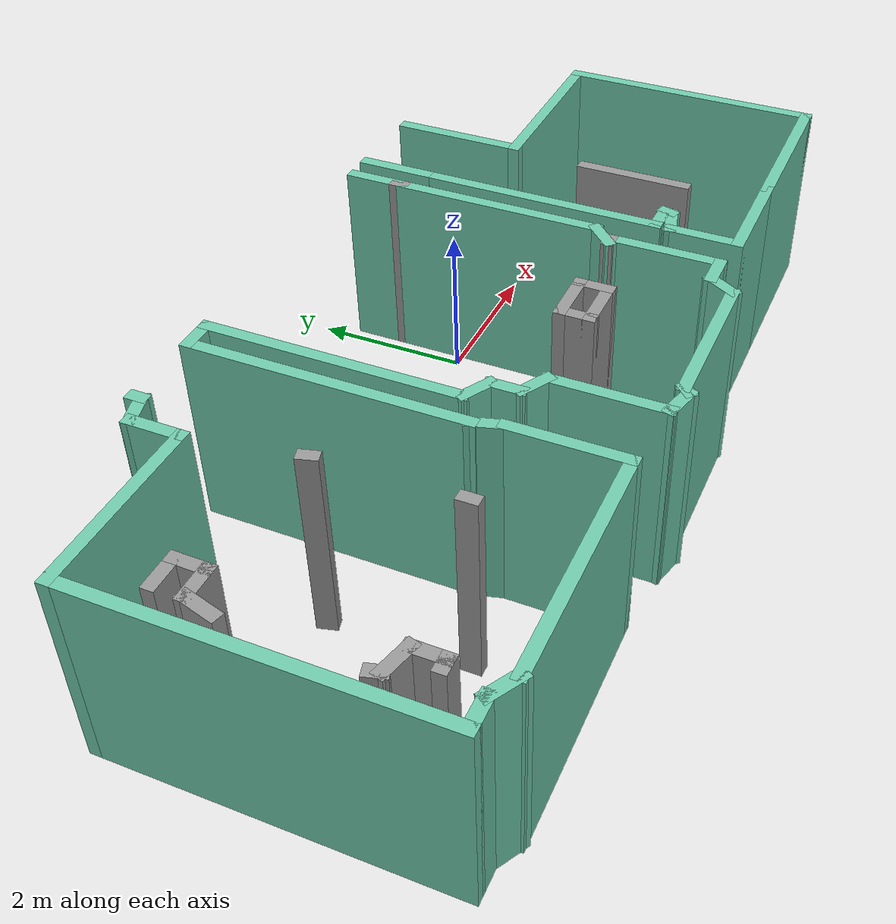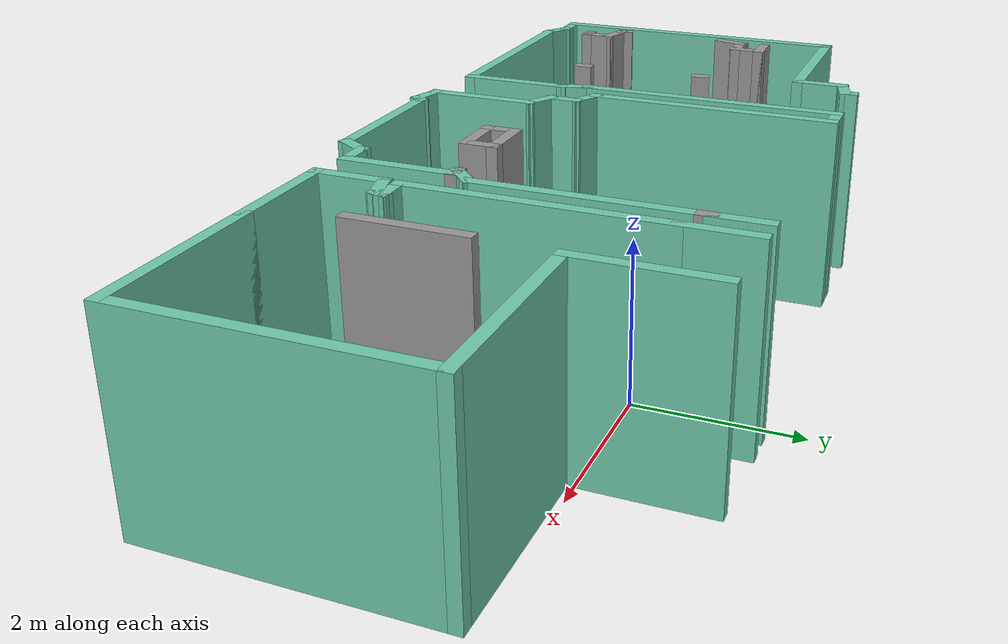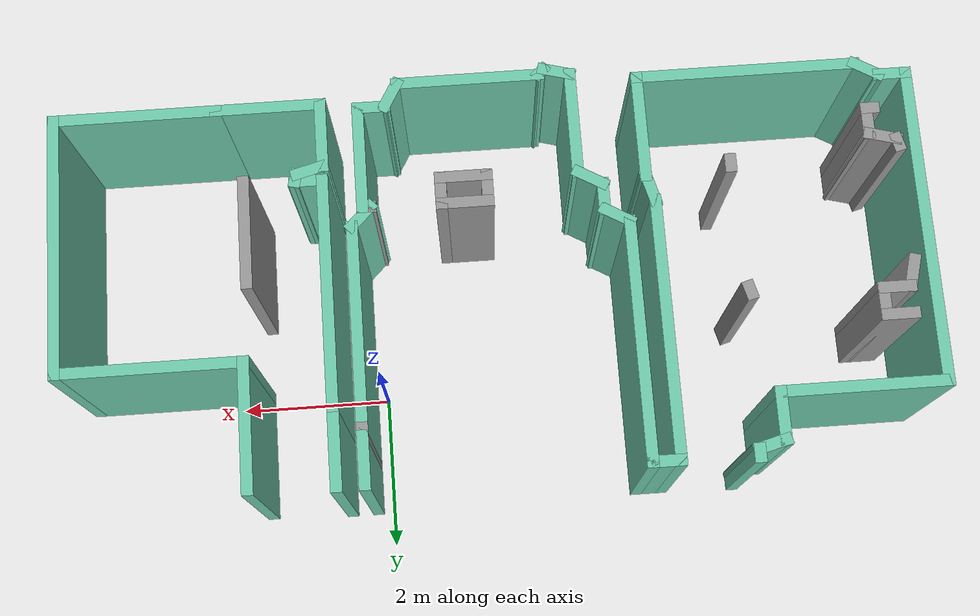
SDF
<sdf version="1.6">
 <model name="map_3">
  <pose>-1.57368 2.22942 0 0 -0 0</pose>
  <link name="Wall_100">
   <collision name="Wall_100_Collision">
    <geometry><box><size>1.75 0.15 2.5</size></box></geometry>
    <pose>0 0 1.25 0 -0 0</pose>
   </collision>
   <visual name="Wall_100_Visual">
    <pose>0 0 1.25 0 -0 0</pose>
    <geometry><box><size>1.75 0.15 2.5</size></box></geometry>
    <material>
     <script><uri>file://media/materials/scripts/gazebo.material</uri><name>Gazebo/Grey</name></script>
     <ambient>0.435294 0.796078 0.67451 1</ambient>
    </material>
    <meta><layer>0</layer></meta>
   </visual>
   <pose>3.22626 -1.57739 0 0 -0 1.5708</pose>
  </link>
  <link name="Wall_125">
   <collision name="Wall_125_Collision">
    <geometry><box><size>0.5 0.15 2.5</size></box></geometry>
    <pose>0 0 1.25 0 -0 0</pose>
   </collision>
   <visual name="Wall_125_Visual">
    <pose>0 0 1.25 0 -0 0</pose>
    <geometry><box><size>0.5 0.15 2.5</size></box></geometry>
    <material>
     <script><uri>file://media/materials/scripts/gazebo.material</uri><name>Gazebo/Grey</name></script>
     <ambient>1 1 1 1</ambient>
    </material>
    <meta><layer>0</layer></meta>
   </visual>
   <pose>0.031075 -4.44181 0 0 -0 -1.5708</pose>
  </link>
  <link name="Wall_126">
   <collision name="Wall_126_Collision">
    <geometry><box><size>0.75 0.15 2.5</size></box></geometry>
    <pose>0 0 1.25 0 -0 0</pose>
   </collision>
   <visual name="Wall_126_Visual">
    <pose>0 0 1.25 0 -0 0</pose>
    <geometry><box><size>0.75 0.15 2.5</size></box></geometry>
    <material>
     <script><uri>file://media/materials/scripts/gazebo.material</uri><name>Gazebo/Grey</name></script>
     <ambient>1 1 1 1</ambient>
    </material>
    <meta><layer>0</layer></meta>
   </visual>
   <pose>0.331075 -4.61681 0 0 -0 0</pose>
  </link>
  <link name="Wall_127">
   <collision name="Wall_127_Collision">
    <geometry><box><size>0.5 0.15 2.5</size></box></geometry>
    <pose>0 0 1.25 0 -0 0</pose>
   </collision>
   <visual name="Wall_127_Visual">
    <pose>0 0 1.25 0 -0 0</pose>
    <geometry><box><size>0.5 0.15 2.5</size></box></geometry>
    <material>
     <script><uri>file://media/materials/scripts/gazebo.material</uri><name>Gazebo/Grey</name></script>
     <ambient>1 1 1 1</ambient>
    </material>
    <meta><layer>0</layer></meta>
   </visual>
   <pose>0.631075 -4.44181 0 0 -0 1.5708</pose>
  </link>
  <link name="Wall_128">
   <collision name="Wall_128_Collision">
    <geometry><box><size>0.75 0.15 2.5</size></box></geometry>
    <pose>0 0 1.25 0 -0 0</pose>
   </collision>
   <visual name="Wall_128_Visual">
    <pose>0 0 1.25 0 -0 0</pose>
    <geometry><box><size>0.75 0.15 2.5</size></box></geometry>
    <material>
     <script><uri>file://media/materials/scripts/gazebo.material</uri><name>Gazebo/Grey</name></script>
     <ambient>1 1 1 1</ambient>
    </material>
    <meta><layer>0</layer></meta>
   </visual>
   <pose>0.331075 -4.26681 0 0 -0 3.14159</pose>
  </link>
  <link name="Wall_130">
   <collision name="Wall_130_Collision">
    <geometry><box><size>1.5 0.15 2.5</size></box></geometry>
    <pose>0 0 1.25 0 -0 0</pose>
   </collision>
   <visual name="Wall_130_Visual">
    <pose>0 0 1.25 0 -0 0</pose>
    <geometry><box><size>1.5 0.15 2.5</size></box></geometry>
    <material>
     <script><uri>file://media/materials/scripts/gazebo.material</uri><name>Gazebo/Grey</name></script>
     <ambient>1 1 1 1</ambient>
    </material>
    <meta><layer>0</layer></meta>
   </visual>
   <pose>3.15108 -4.06181 0 0 -0 -1.5708</pose>
  </link>
  <link name="Wall_132">
   <collision name="Wall_132_Collision">
    <geometry><box><size>0.25 0.15 2.5</size></box></geometry>
    <pose>0 0 1.25 0 -0 0</pose>
   </collision>
   <visual name="Wall_132_Visual">
    <pose>0 0 1.25 0 -0 0</pose>
    <geometry><box><size>0.25 0.15 2.5</size></box></geometry>
    <material>
     <script><uri>file://media/materials/scripts/gazebo.material</uri><name>Gazebo/Grey</name></script>
     <ambient>1 1 1 1</ambient>
    </material>
    <meta><layer>0</layer></meta>
   </visual>
   <pose>-3.17598 -2.85511 0 0 -0 -1.309</pose>
  </link>
  <link name="Wall_134">
   <collision name="Wall_134_Collision">
    <geometry><box><size>0.25 0.15 2.5</size></box></geometry>
    <pose>0 0 1.25 0 -0 0</pose>
   </collision>
   <visual name="Wall_134_Visual">
    <pose>0 0 1.25 0 -0 0</pose>
    <geometry><box><size>0.25 0.15 2.5</size></box></geometry>
    <material>
     <script><uri>file://media/materials/scripts/gazebo.material</uri><name>Gazebo/Grey</name></script>
     <ambient>1 1 1 1</ambient>
    </material>
    <meta><layer>0</layer></meta>
   </visual>
   <pose>-3.10893 -4.55681 0 0 -0 -1.5708</pose>
  </link>
  <link name="Wall_138">
   <collision name="Wall_138_Collision">
    <geometry><box><size>0.5 0.15 2.5</size></box></geometry>
    <pose>0 0 1.25 0 -0 0</pose>
   </collision>
   <visual name="Wall_138_Visual">
    <pose>0 0 1.25 0 -0 0</pose>
    <geometry><box><size>0.5 0.15 2.5</size></box></geometry>
    <material>
     <script><uri>file://media/materials/scripts/gazebo.material</uri><name>Gazebo/Grey</name></script>
     <ambient>1 1 1 1</ambient>
    </material>
    <meta><layer>0</layer></meta>
   </visual>
   <pose>-5.02718 -2.4211 0 0 -0 0</pose>
  </link>
  <link name="Wall_139">
   <collision name="Wall_139_Collision">
    <geometry><box><size>0.5 0.15 2.5</size></box></geometry>
    <pose>0 0 1.25 0 -0 0</pose>
   </collision>
   <visual name="Wall_139_Visual">
    <pose>0 0 1.25 0 -0 0</pose>
    <geometry><box><size>0.5 0.15 2.5</size></box></geometry>
    <material>
     <script><uri>file://media/materials/scripts/gazebo.material</uri><name>Gazebo/Grey</name></script>
     <ambient>1 1 1 1</ambient>
    </material>
    <meta><layer>0</layer></meta>
   </visual>
   <pose>-4.85218 -2.5961 0 0 -0 -1.5708</pose>
  </link>
  <link name="Wall_140">
   <collision name="Wall_140_Collision">
    <geometry><box><size>0.5 0.15 2.5</size></box></geometry>
    <pose>0 0 1.25 0 -0 0</pose>
   </collision>
   <visual name="Wall_140_Visual">
    <pose>0 0 1.25 0 -0 0</pose>
    <geometry><box><size>0.5 0.15 2.5</size></box></geometry>
    <material>
     <script><uri>file://media/materials/scripts/gazebo.material</uri><name>Gazebo/Grey</name></script>
     <ambient>1 1 1 1</ambient>
    </material>
    <meta><layer>0</layer></meta>
   </visual>
   <pose>-5.02718 -2.7711 0 0 -0 3.14159</pose>
  </link>
  <link name="Wall_141">
   <collision name="Wall_141_Collision">
    <geometry><box><size>0.5 0.15 2.5</size></box></geometry>
    <pose>0 0 1.25 0 -0 0</pose>
   </collision>
   <visual name="Wall_141_Visual">
    <pose>0 0 1.25 0 -0 0</pose>
    <geometry><box><size>0.5 0.15 2.5</size></box></geometry>
    <material>
     <script><uri>file://media/materials/scripts/gazebo.material</uri><name>Gazebo/Grey</name></script>
     <ambient>1 1 1 1</ambient>
    </material>
    <meta><layer>0</layer></meta>
   </visual>
   <pose>-5.24747 -2.94014 0 0 -0 -1.8326</pose>
  </link>
  <link name="Wall_144">
   <collision name="Wall_144_Collision">
    <geometry><box><size>0.25 0.15 2.5</size></box></geometry>
    <pose>0 0 1.25 0 -0 0</pose>
   </collision>
   <visual name="Wall_144_Visual">
    <pose>0 0 1.25 0 -0 0</pose>
    <geometry><box><size>0.25 0.15 2.5</size></box></geometry>
    <material>
     <script><uri>file://media/materials/scripts/gazebo.material</uri><name>Gazebo/Grey</name></script>
     <ambient>1 1 1 1</ambient>
    </material>
    <meta><layer>0</layer></meta>
   </visual>
   <pose>-5.28923 -4.6894 0 0 -0 -1.309</pose>
  </link>
  <link name="Wall_145">
   <collision name="Wall_145_Collision">
    <geometry><box><size>0.5 0.15 2.5</size></box></geometry>
    <pose>0 0 1.25 0 -0 0</pose>
   </collision>
   <visual name="Wall_145_Visual">
    <pose>0 0 1.25 0 -0 0</pose>
    <geometry><box><size>0.5 0.15 2.5</size></box></geometry>
    <material>
     <script><uri>file://media/materials/scripts/gazebo.material</uri><name>Gazebo/Grey</name></script>
     <ambient>1 1 1 1</ambient>
    </material>
    <meta><layer>0</layer></meta>
   </visual>
   <pose>-5.10726 -4.78299 0 0 -0 -0.261799</pose>
  </link>
  <link name="Wall_146">
   <collision name="Wall_146_Collision">
    <geometry><box><size>0.5 0.15 2.5</size></box></geometry>
    <pose>0 0 1.25 0 -0 0</pose>
   </collision>
   <visual name="Wall_146_Visual">
    <pose>0 0 1.25 0 -0 0</pose>
    <geometry><box><size>0.5 0.15 2.5</size></box></geometry>
    <material>
     <script><uri>file://media/materials/scripts/gazebo.material</uri><name>Gazebo/Grey</name></script>
     <ambient>1 1 1 1</ambient>
    </material>
    <meta><layer>0</layer></meta>
   </visual>
   <pose>-4.93822 -5.00328 0 0 -0 -1.5708</pose>
  </link>
  <link name="Wall_147">
   <collision name="Wall_147_Collision">
    <geometry><box><size>0.25 0.15 2.5</size></box></geometry>
    <pose>0 0 1.25 0 -0 0</pose>
   </collision>
   <visual name="Wall_147_Visual">
    <pose>0 0 1.25 0 -0 0</pose>
    <geometry><box><size>0.25 0.15 2.5</size></box></geometry>
    <material>
     <script><uri>file://media/materials/scripts/gazebo.material</uri><name>Gazebo/Grey</name></script>
     <ambient>1 1 1 1</ambient>
    </material>
    <meta><layer>0</layer></meta>
   </visual>
   <pose>-4.98822 -5.17828 0 0 -0 3.14159</pose>
  </link>
  <link name="Wall_56">
   <collision name="Wall_56_Collision">
    <geometry><box><size>0.25 0.15 2.5</size></box></geometry>
    <pose>0 0 1.25 0 -0 0</pose>
   </collision>
   <visual name="Wall_56_Visual">
    <pose>0 0 1.25 0 -0 0</pose>
    <geometry><box><size>0.25 0.15 2.5</size></box></geometry>
    <material>
     <script><uri>file://media/materials/scripts/gazebo.material</uri><name>Gazebo/Grey</name></script>
     <ambient>0.435294 0.796078 0.67451 1</ambient>
    </material>
    <meta><layer>0</layer></meta>
   </visual>
   <pose>-3.07172 -0.793419 0 0 -0 -1.5708</pose>
  </link>
  <link name="Wall_57">
   <collision name="Wall_57_Collision">
    <geometry><box><size>0.5 0.15 2.5</size></box></geometry>
    <pose>0 0 1.25 0 -0 0</pose>
   </collision>
   <visual name="Wall_57_Visual">
    <pose>0 0 1.25 0 -0 0</pose>
    <geometry><box><size>0.5 0.15 2.5</size></box></geometry>
    <material>
     <script><uri>file://media/materials/scripts/gazebo.material</uri><name>Gazebo/Grey</name></script>
     <ambient>0.435294 0.796078 0.67451 1</ambient>
    </material>
    <meta><layer>0</layer></meta>
   </visual>
   <pose>-3.24076 -0.888712 0 0 -0 -2.87979</pose>
  </link>
  <link name="Wall_58">
   <collision name="Wall_58_Collision">
    <geometry><box><size>0.75 0.15 2.5</size></box></geometry>
    <pose>0 0 1.25 0 -0 0</pose>
   </collision>
   <visual name="Wall_58_Visual">
    <pose>0 0 1.25 0 -0 0</pose>
    <geometry><box><size>0.75 0.15 2.5</size></box></geometry>
    <material>
     <script><uri>file://media/materials/scripts/gazebo.material</uri><name>Gazebo/Grey</name></script>
     <ambient>0.435294 0.796078 0.67451 1</ambient>
    </material>
    <meta><layer>0</layer></meta>
   </visual>
   <pose>-3.40979 -1.23401 0 0 -0 -1.5708</pose>
  </link>
  <link name="Wall_59">
   <collision name="Wall_59_Collision">
    <geometry><box><size>2.25 0.15 2.5</size></box></geometry>
    <pose>0 0 1.25 0 -0 0</pose>
   </collision>
   <visual name="Wall_59_Visual">
    <pose>0 0 1.25 0 -0 0</pose>
    <geometry><box><size>2.25 0.15 2.5</size></box></geometry>
    <material>
     <script><uri>file://media/materials/scripts/gazebo.material</uri><name>Gazebo/Grey</name></script>
     <ambient>0.435294 0.796078 0.67451 1</ambient>
    </material>
    <meta><layer>0</layer></meta>
   </visual>
   <pose>-4.45979 -1.53401 0 0 -0 3.14159</pose>
  </link>
  <link name="Wall_62">
   <collision name="Wall_62_Collision">
    <geometry><box><size>4.25 0.15 2.5</size></box></geometry>
    <pose>0 0 1.25 0 -0 0</pose>
   </collision>
   <visual name="Wall_62_Visual">
    <pose>0 0 1.25 0 -0 0</pose>
    <geometry><box><size>4.25 0.15 2.5</size></box></geometry>
    <material>
     <script><uri>file://media/materials/scripts/gazebo.material</uri><name>Gazebo/Grey</name></script>
     <ambient>0.435294 0.796078 0.67451 1</ambient>
    </material>
    <meta><layer>0</layer></meta>
   </visual>
   <pose>-5.50979 -3.58401 0 0 -0 -1.5708</pose>
  </link>
  <link name="Wall_63">
   <collision name="Wall_63_Collision">
    <geometry><box><size>0.5 0.15 2.5</size></box></geometry>
    <pose>0 0 1.25 0 -0 0</pose>
   </collision>
   <visual name="Wall_63_Visual">
    <pose>0 0 1.25 0 -0 0</pose>
    <geometry><box><size>0.5 0.15 2.5</size></box></geometry>
    <material>
     <script><uri>file://media/materials/scripts/gazebo.material</uri><name>Gazebo/Grey</name></script>
     <ambient>0.435294 0.796078 0.67451 1</ambient>
    </material>
    <meta><layer>0</layer></meta>
   </visual>
   <pose>-5.33479 -5.63401 0 0 -0 0</pose>
  </link>
  <link name="Wall_64">
   <collision name="Wall_64_Collision">
    <geometry><box><size>0.5 0.15 2.5</size></box></geometry>
    <pose>0 0 1.25 0 -0 0</pose>
   </collision>
   <visual name="Wall_64_Visual">
    <pose>0 0 1.25 0 -0 0</pose>
    <geometry><box><size>0.5 0.15 2.5</size></box></geometry>
    <material>
     <script><uri>file://media/materials/scripts/gazebo.material</uri><name>Gazebo/Grey</name></script>
     <ambient>0.435294 0.796078 0.67451 1</ambient>
    </material>
    <meta><layer>0</layer></meta>
   </visual>
   <pose>-5.00824 -5.72151 0 0 -0 -0.523599</pose>
  </link>
  <link name="Wall_65">
   <collision name="Wall_65_Collision">
    <geometry><box><size>3 0.15 2.5</size></box></geometry>
    <pose>0 0 1.25 0 -0 0</pose>
   </collision>
   <visual name="Wall_65_Visual">
    <pose>0 0 1.25 0 -0 0</pose>
    <geometry><box><size>3 0.15 2.5</size></box></geometry>
    <material>
     <script><uri>file://media/materials/scripts/gazebo.material</uri><name>Gazebo/Grey</name></script>
     <ambient>0.435294 0.796078 0.67451 1</ambient>
    </material>
    <meta><layer>0</layer></meta>
   </visual>
   <pose>-3.43168 -5.80901 0 0 -0 0</pose>
  </link>
  <link name="Wall_66">
   <collision name="Wall_66_Collision">
    <geometry><box><size>1.5 0.15 2.5</size></box></geometry>
    <pose>0 0 1.25 0 -0 0</pose>
   </collision>
   <visual name="Wall_66_Visual">
    <pose>0 0 1.25 0 -0 0</pose>
    <geometry><box><size>1.5 0.15 2.5</size></box></geometry>
    <material>
     <script><uri>file://media/materials/scripts/gazebo.material</uri><name>Gazebo/Grey</name></script>
     <ambient>0.435294 0.796078 0.67451 1</ambient>
    </material>
    <meta><layer>0</layer></meta>
   </visual>
   <pose>-2.00669 -5.13401 0 0 -0 1.5708</pose>
  </link>
  <link name="Wall_67">
   <collision name="Wall_67_Collision">
    <geometry><box><size>0.5 0.15 2.5</size></box></geometry>
    <pose>0 0 1.25 0 -0 0</pose>
   </collision>
   <visual name="Wall_67_Visual">
    <pose>0 0 1.25 0 -0 0</pose>
    <geometry><box><size>0.5 0.15 2.5</size></box></geometry>
    <material>
     <script><uri>file://media/materials/scripts/gazebo.material</uri><name>Gazebo/Grey</name></script>
     <ambient>0.435294 0.796078 0.67451 1</ambient>
    </material>
    <meta><layer>0</layer></meta>
   </visual>
   <pose>-2.05198 -4.28997 0 0 -0 1.8326</pose>
  </link>
  <link name="Wall_68">
   <collision name="Wall_68_Collision">
    <geometry><box><size>3.5 0.15 2.5</size></box></geometry>
    <pose>0 0 1.25 0 -0 0</pose>
   </collision>
   <visual name="Wall_68_Visual">
    <pose>0 0 1.25 0 -0 0</pose>
    <geometry><box><size>3.5 0.15 2.5</size></box></geometry>
    <material>
     <script><uri>file://media/materials/scripts/gazebo.material</uri><name>Gazebo/Grey</name></script>
     <ambient>0.435294 0.796078 0.67451 1</ambient>
    </material>
    <meta><layer>0</layer></meta>
   </visual>
   <pose>-2.09727 -2.44593 0 0 -0 1.5708</pose>
  </link>
  <link name="Wall_69">
   <collision name="Wall_69_Collision">
    <geometry><box><size>0.5 0.15 2.5</size></box></geometry>
    <pose>0 0 1.25 0 -0 0</pose>
   </collision>
   <visual name="Wall_69_Visual">
    <pose>0 0 1.25 0 -0 0</pose>
    <geometry><box><size>0.5 0.15 2.5</size></box></geometry>
    <material>
     <script><uri>file://media/materials/scripts/gazebo.material</uri><name>Gazebo/Grey</name></script>
     <ambient>0.435294 0.796078 0.67451 1</ambient>
    </material>
    <meta><layer>0</layer></meta>
   </visual>
   <pose>-1.92227 -0.770932 0 0 -0 0</pose>
  </link>
  <link name="Wall_70">
   <collision name="Wall_70_Collision">
    <geometry><box><size>3.25 0.15 2.5</size></box></geometry>
    <pose>0 0 1.25 0 -0 0</pose>
   </collision>
   <visual name="Wall_70_Visual">
    <pose>0 0 1.25 0 -0 0</pose>
    <geometry><box><size>3.25 0.15 2.5</size></box></geometry>
    <material>
     <script><uri>file://media/materials/scripts/gazebo.material</uri><name>Gazebo/Grey</name></script>
     <ambient>0.435294 0.796078 0.67451 1</ambient>
    </material>
    <meta><layer>0</layer></meta>
   </visual>
   <pose>-1.74727 -2.32093 0 0 -0 -1.5708</pose>
  </link>
  <link name="Wall_71">
   <collision name="Wall_71_Collision">
    <geometry><box><size>0.5 0.15 2.5</size></box></geometry>
    <pose>0 0 1.25 0 -0 0</pose>
   </collision>
   <visual name="Wall_71_Visual">
    <pose>0 0 1.25 0 -0 0</pose>
    <geometry><box><size>0.5 0.15 2.5</size></box></geometry>
    <material>
     <script><uri>file://media/materials/scripts/gazebo.material</uri><name>Gazebo/Grey</name></script>
     <ambient>0.435294 0.796078 0.67451 1</ambient>
    </material>
    <meta><layer>0</layer></meta>
   </visual>
   <pose>-1.59572 -3.95843 0 0 -0 -0.523599</pose>
  </link>
  <link name="Wall_72">
   <collision name="Wall_72_Collision">
    <geometry><box><size>0.5 0.15 2.5</size></box></geometry>
    <pose>0 0 1.25 0 -0 0</pose>
   </collision>
   <visual name="Wall_72_Visual">
    <pose>0 0 1.25 0 -0 0</pose>
    <geometry><box><size>0.5 0.15 2.5</size></box></geometry>
    <material>
     <script><uri>file://media/materials/scripts/gazebo.material</uri><name>Gazebo/Grey</name></script>
     <ambient>0.435294 0.796078 0.67451 1</ambient>
    </material>
    <meta><layer>0</layer></meta>
   </visual>
   <pose>-1.44416 -4.22093 0 0 -0 -1.5708</pose>
  </link>
  <link name="Wall_73">
   <collision name="Wall_73_Collision">
    <geometry><box><size>0.5 0.15 2.5</size></box></geometry>
    <pose>0 0 1.25 0 -0 0</pose>
   </collision>
   <visual name="Wall_73_Visual">
    <pose>0 0 1.25 0 -0 0</pose>
    <geometry><box><size>0.5 0.15 2.5</size></box></geometry>
    <material>
     <script><uri>file://media/materials/scripts/gazebo.material</uri><name>Gazebo/Grey</name></script>
     <ambient>0.435294 0.796078 0.67451 1</ambient>
    </material>
    <meta><layer>0</layer></meta>
   </visual>
   <pose>-1.29261 -4.48343 0 0 -0 -0.523599</pose>
  </link>
  <link name="Wall_74">
   <collision name="Wall_74_Collision">
    <geometry><box><size>1.5 0.15 2.5</size></box></geometry>
    <pose>0 0 1.25 0 -0 0</pose>
   </collision>
   <visual name="Wall_74_Visual">
    <pose>0 0 1.25 0 -0 0</pose>
    <geometry><box><size>1.5 0.15 2.5</size></box></geometry>
    <material>
     <script><uri>file://media/materials/scripts/gazebo.material</uri><name>Gazebo/Grey</name></script>
     <ambient>0.435294 0.796078 0.67451 1</ambient>
    </material>
    <meta><layer>0</layer></meta>
   </visual>
   <pose>-1.14105 -5.24593 0 0 -0 -1.5708</pose>
  </link>
  <link name="Wall_75">
   <collision name="Wall_75_Collision">
    <geometry><box><size>0.5 0.15 2.5</size></box></geometry>
    <pose>0 0 1.25 0 -0 0</pose>
   </collision>
   <visual name="Wall_75_Visual">
    <pose>0 0 1.25 0 -0 0</pose>
    <geometry><box><size>0.5 0.15 2.5</size></box></geometry>
    <material>
     <script><uri>file://media/materials/scripts/gazebo.material</uri><name>Gazebo/Grey</name></script>
     <ambient>0.435294 0.796078 0.67451 1</ambient>
    </material>
    <meta><layer>0</layer></meta>
   </visual>
   <pose>-0.972017 -5.96622 0 0 -0 -0.261799</pose>
  </link>
  <link name="Wall_77">
   <collision name="Wall_77_Collision">
    <geometry><box><size>0.25 0.15 2.5</size></box></geometry>
    <pose>0 0 1.25 0 -0 0</pose>
   </collision>
   <visual name="Wall_77_Visual">
    <pose>0 0 1.25 0 -0 0</pose>
    <geometry><box><size>0.25 0.15 2.5</size></box></geometry>
    <material>
     <script><uri>file://media/materials/scripts/gazebo.material</uri><name>Gazebo/Grey</name></script>
     <ambient>0.435294 0.796078 0.67451 1</ambient>
    </material>
    <meta><layer>0</layer></meta>
   </visual>
   <pose>-0.767624 -5.97616 0 0 -0 0.785398</pose>
  </link>
  <link name="Wall_78">
   <collision name="Wall_78_Collision">
    <geometry><box><size>2 0.15 2.5</size></box></geometry>
    <pose>0 0 1.25 0 -0 0</pose>
   </collision>
   <visual name="Wall_78_Visual">
    <pose>0 0 1.25 0 -0 0</pose>
    <geometry><box><size>2 0.15 2.5</size></box></geometry>
    <material>
     <script><uri>file://media/materials/scripts/gazebo.material</uri><name>Gazebo/Grey</name></script>
     <ambient>0.435294 0.796078 0.67451 1</ambient>
    </material>
    <meta><layer>0</layer></meta>
   </visual>
   <pose>0.192731 -5.94081 0 0 -0 0</pose>
  </link>
  <link name="Wall_79">
   <collision name="Wall_79_Collision">
    <geometry><box><size>0.5 0.15 2.5</size></box></geometry>
    <pose>0 0 1.25 0 -0 0</pose>
   </collision>
   <visual name="Wall_79_Visual">
    <pose>0 0 1.25 0 -0 0</pose>
    <geometry><box><size>0.5 0.15 2.5</size></box></geometry>
    <material>
     <script><uri>file://media/materials/scripts/gazebo.material</uri><name>Gazebo/Grey</name></script>
     <ambient>0.435294 0.796078 0.67451 1</ambient>
    </material>
    <meta><layer>0</layer></meta>
   </visual>
   <pose>1.20523 -5.78925 0 0 -0 1.0472</pose>
  </link>
  <link name="Wall_80">
   <collision name="Wall_80_Collision">
    <geometry><box><size>0.5 0.15 2.5</size></box></geometry>
    <pose>0 0 1.25 0 -0 0</pose>
   </collision>
   <visual name="Wall_80_Visual">
    <pose>0 0 1.25 0 -0 0</pose>
    <geometry><box><size>0.5 0.15 2.5</size></box></geometry>
    <material>
     <script><uri>file://media/materials/scripts/gazebo.material</uri><name>Gazebo/Grey</name></script>
     <ambient>0.435294 0.796078 0.67451 1</ambient>
    </material>
    <meta><layer>0</layer></meta>
   </visual>
   <pose>1.46773 -5.6377 0 0 -0 0</pose>
  </link>
  <link name="Wall_81">
   <collision name="Wall_81_Collision">
    <geometry><box><size>1.5 0.15 2.5</size></box></geometry>
    <pose>0 0 1.25 0 -0 0</pose>
   </collision>
   <visual name="Wall_81_Visual">
    <pose>0 0 1.25 0 -0 0</pose>
    <geometry><box><size>1.5 0.15 2.5</size></box></geometry>
    <material>
     <script><uri>file://media/materials/scripts/gazebo.material</uri><name>Gazebo/Grey</name></script>
     <ambient>0.435294 0.796078 0.67451 1</ambient>
    </material>
    <meta><layer>0</layer></meta>
   </visual>
   <pose>1.64273 -4.9627 0 0 -0 1.5708</pose>
  </link>
  <link name="Wall_82">
   <collision name="Wall_82_Collision">
    <geometry><box><size>0.25 0.15 2.5</size></box></geometry>
    <pose>0 0 1.25 0 -0 0</pose>
   </collision>
   <visual name="Wall_82_Visual">
    <pose>0 0 1.25 0 -0 0</pose>
    <geometry><box><size>0.25 0.15 2.5</size></box></geometry>
    <material>
     <script><uri>file://media/materials/scripts/gazebo.material</uri><name>Gazebo/Grey</name></script>
     <ambient>1 1 1 1</ambient>
    </material>
    <meta><layer>0</layer></meta>
   </visual>
   <pose>1.59273 -4.2877 0 0 -0 3.14159</pose>
  </link>
  <link name="Wall_83">
   <collision name="Wall_83_Collision">
    <geometry><box><size>0.5 0.15 2.5</size></box></geometry>
    <pose>0 0 1.25 0 -0 0</pose>
   </collision>
   <visual name="Wall_83_Visual">
    <pose>0 0 1.25 0 -0 0</pose>
    <geometry><box><size>0.5 0.15 2.5</size></box></geometry>
    <material>
     <script><uri>file://media/materials/scripts/gazebo.material</uri><name>Gazebo/Grey</name></script>
     <ambient>0.435294 0.796078 0.67451 1</ambient>
    </material>
    <meta><layer>0</layer></meta>
   </visual>
   <pose>1.66647 -4.16395 0 0 -0 0.785398</pose>
  </link>
  <link name="Wall_86">
   <collision name="Wall_86_Collision">
    <geometry><box><size>2.75 0.15 2.5</size></box></geometry>
    <pose>0 0 1.25 0 -0 0</pose>
   </collision>
   <visual name="Wall_86_Visual">
    <pose>0 0 1.25 0 -0 0</pose>
    <geometry><box><size>2.75 0.15 2.5</size></box></geometry>
    <material>
     <script><uri>file://media/materials/scripts/gazebo.material</uri><name>Gazebo/Grey</name></script>
     <ambient>0.435294 0.796078 0.67451 1</ambient>
    </material>
    <meta><layer>0</layer></meta>
   </visual>
   <pose>1.79022 -2.74021 0 0 -0 1.5708</pose>
  </link>
  <link name="Wall_87">
   <collision name="Wall_87_Collision">
    <geometry><box><size>0.25 0.15 2.5</size></box></geometry>
    <pose>0 0 1.25 0 -0 0</pose>
   </collision>
   <visual name="Wall_87_Visual">
    <pose>0 0 1.25 0 -0 0</pose>
    <geometry><box><size>0.25 0.15 2.5</size></box></geometry>
    <material>
     <script><uri>file://media/materials/scripts/gazebo.material</uri><name>Gazebo/Grey</name></script>
     <ambient>1 1 1 1</ambient>
    </material>
    <meta><layer>0</layer></meta>
   </visual>
   <pose>1.79022 -1.39021 0 0 -0 1.5708</pose>
  </link>
  <link name="Wall_88">
   <collision name="Wall_88_Collision">
    <geometry><box><size>0.75 0.15 2.5</size></box></geometry>
    <pose>0 0 1.25 0 -0 0</pose>
   </collision>
   <visual name="Wall_88_Visual">
    <pose>0 0 1.25 0 -0 0</pose>
    <geometry><box><size>0.75 0.15 2.5</size></box></geometry>
    <material>
     <script><uri>file://media/materials/scripts/gazebo.material</uri><name>Gazebo/Grey</name></script>
     <ambient>0.435294 0.796078 0.67451 1</ambient>
    </material>
    <meta><layer>0</layer></meta>
   </visual>
   <pose>1.79022 -1.04021 0 0 -0 1.5708</pose>
  </link>
  <link name="Wall_90">
   <collision name="Wall_90_Collision">
    <geometry><box><size>1 0.15 2.5</size></box></geometry>
    <pose>0 0 1.25 0 -0 0</pose>
   </collision>
   <visual name="Wall_90_Visual">
    <pose>0 0 1.25 0 -0 0</pose>
    <geometry><box><size>1 0.15 2.5</size></box></geometry>
    <material>
     <script><uri>file://media/materials/scripts/gazebo.material</uri><name>Gazebo/Grey</name></script>
     <ambient>0.435294 0.796078 0.67451 1</ambient>
    </material>
    <meta><layer>0</layer></meta>
   </visual>
   <pose>2.14022 -1.16521 0 0 -0 -1.5708</pose>
  </link>
  <link name="Wall_91">
   <collision name="Wall_91_Collision">
    <geometry><box><size>3.25 0.15 2.5</size></box></geometry>
    <pose>0 0 1.25 0 -0 0</pose>
   </collision>
   <visual name="Wall_91_Visual">
    <pose>0 0 1.25 0 -0 0</pose>
    <geometry><box><size>3.25 0.15 2.5</size></box></geometry>
    <material>
     <script><uri>file://media/materials/scripts/gazebo.material</uri><name>Gazebo/Grey</name></script>
     <ambient>0.435294 0.796078 0.67451 1</ambient>
    </material>
    <meta><layer>0</layer></meta>
   </visual>
   <pose>2.14022 -3.14021 0 0 -0 -1.5708</pose>
  </link>
  <link name="Wall_92">
   <collision name="Wall_92_Collision">
    <geometry><box><size>0.5 0.15 2.5</size></box></geometry>
    <pose>0 0 1.25 0 -0 0</pose>
   </collision>
   <visual name="Wall_92_Visual">
    <pose>0 0 1.25 0 -0 0</pose>
    <geometry><box><size>0.5 0.15 2.5</size></box></geometry>
    <material>
     <script><uri>file://media/materials/scripts/gazebo.material</uri><name>Gazebo/Grey</name></script>
     <ambient>0.435294 0.796078 0.67451 1</ambient>
    </material>
    <meta><layer>0</layer></meta>
   </visual>
   <pose>2.31522 -4.69021 0 0 -0 0</pose>
  </link>
  <link name="Wall_93">
   <collision name="Wall_93_Collision">
    <geometry><box><size>0.25 0.15 2.5</size></box></geometry>
    <pose>0 0 1.25 0 -0 0</pose>
   </collision>
   <visual name="Wall_93_Visual">
    <pose>0 0 1.25 0 -0 0</pose>
    <geometry><box><size>0.25 0.15 2.5</size></box></geometry>
    <material>
     <script><uri>file://media/materials/scripts/gazebo.material</uri><name>Gazebo/Grey</name></script>
     <ambient>0.435294 0.796078 0.67451 1</ambient>
    </material>
    <meta><layer>0</layer></meta>
   </visual>
   <pose>2.47728 -4.73851 0 0 -0 -1.8326</pose>
  </link>
  <link name="Wall_94">
   <collision name="Wall_94_Collision">
    <geometry><box><size>0.5 0.15 2.5</size></box></geometry>
    <pose>0 0 1.25 0 -0 0</pose>
   </collision>
   <visual name="Wall_94_Visual">
    <pose>0 0 1.25 0 -0 0</pose>
    <geometry><box><size>0.5 0.15 2.5</size></box></geometry>
    <material>
     <script><uri>file://media/materials/scripts/gazebo.material</uri><name>Gazebo/Grey</name></script>
     <ambient>0.435294 0.796078 0.67451 1</ambient>
    </material>
    <meta><layer>0</layer></meta>
   </visual>
   <pose>2.2953 -4.8321 0 0 -0 -2.87979</pose>
  </link>
  <link name="Wall_95">
   <collision name="Wall_95_Collision">
    <geometry><box><size>1 0.15 2.5</size></box></geometry>
    <pose>0 0 1.25 0 -0 0</pose>
   </collision>
   <visual name="Wall_95_Visual">
    <pose>0 0 1.25 0 -0 0</pose>
    <geometry><box><size>1 0.15 2.5</size></box></geometry>
    <material>
     <script><uri>file://media/materials/scripts/gazebo.material</uri><name>Gazebo/Grey</name></script>
     <ambient>0.435294 0.796078 0.67451 1</ambient>
    </material>
    <meta><layer>0</layer></meta>
   </visual>
   <pose>2.12626 -5.30239 0 0 -0 -1.5708</pose>
  </link>
  <link name="Wall_96">
   <collision name="Wall_96_Collision">
    <geometry><box><size>1.5 0.15 2.5</size></box></geometry>
    <pose>0 0 1.25 0 -0 0</pose>
   </collision>
   <visual name="Wall_96_Visual">
    <pose>0 0 1.25 0 -0 0</pose>
    <geometry><box><size>1.5 0.15 2.5</size></box></geometry>
    <material>
     <script><uri>file://media/materials/scripts/gazebo.material</uri><name>Gazebo/Grey</name></script>
     <ambient>0.435294 0.796078 0.67451 1</ambient>
    </material>
    <meta><layer>0</layer></meta>
   </visual>
   <pose>2.80126 -5.72739 0 0 -0 0</pose>
  </link>
  <link name="Wall_97">
   <collision name="Wall_97_Collision">
    <geometry><box><size>2.25 0.15 2.5</size></box></geometry>
    <pose>0 0 1.25 0 -0 0</pose>
   </collision>
   <visual name="Wall_97_Visual">
    <pose>0 0 1.25 0 -0 0</pose>
    <geometry><box><size>2.25 0.15 2.5</size></box></geometry>
    <material>
     <script><uri>file://media/materials/scripts/gazebo.material</uri><name>Gazebo/Grey</name></script>
     <ambient>0.435294 0.796078 0.67451 1</ambient>
    </material>
    <meta><layer>0</layer></meta>
   </visual>
   <pose>4.52626 -5.72739 0 0 -0 0</pose>
  </link>
  <link name="Wall_98">
   <collision name="Wall_98_Collision">
    <geometry><box><size>3.5 0.15 2.5</size></box></geometry>
    <pose>0 0 1.25 0 -0 0</pose>
   </collision>
   <visual name="Wall_98_Visual">
    <pose>0 0 1.25 0 -0 0</pose>
    <geometry><box><size>3.5 0.15 2.5</size></box></geometry>
    <material>
     <script><uri>file://media/materials/scripts/gazebo.material</uri><name>Gazebo/Grey</name></script>
     <ambient>0.435294 0.796078 0.67451 1</ambient>
    </material>
    <meta><layer>0</layer></meta>
   </visual>
   <pose>5.57626 -4.05239 0 0 -0 1.5708</pose>
  </link>
  <link name="Wall_99">
   <collision name="Wall_99_Collision">
    <geometry><box><size>2.5 0.15 2.5</size></box></geometry>
    <pose>0 0 1.25 0 -0 0</pose>
   </collision>
   <visual name="Wall_99_Visual">
    <pose>0 0 1.25 0 -0 0</pose>
    <geometry><box><size>2.5 0.15 2.5</size></box></geometry>
    <material>
     <script><uri>file://media/materials/scripts/gazebo.material</uri><name>Gazebo/Grey</name></script>
     <ambient>0.435294 0.796078 0.67451 1</ambient>
    </material>
    <meta><layer>0</layer></meta>
   </visual>
   <pose>4.40126 -2.37739 0 0 -0 3.14159</pose>
  </link>
  <static>1</static>
 </model>
</sdf>
